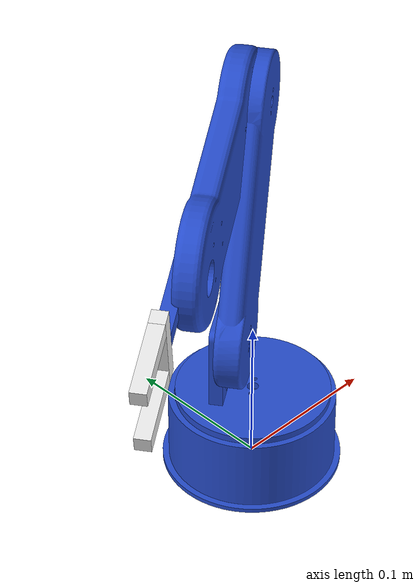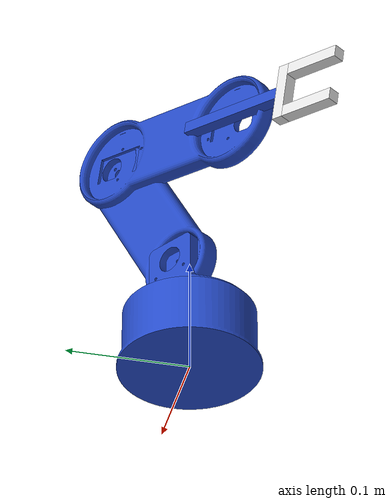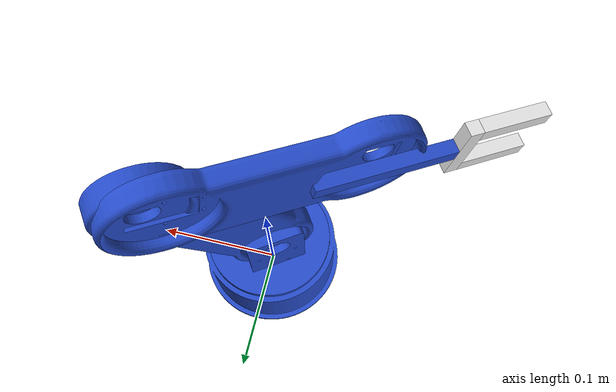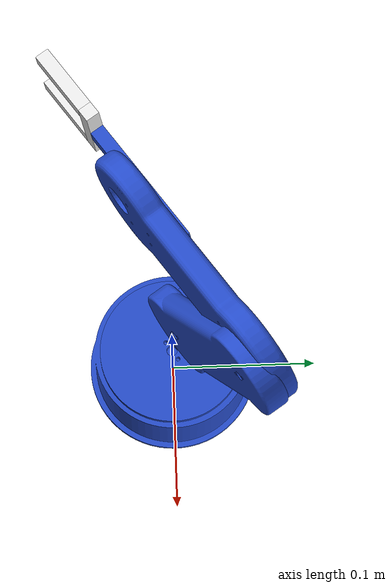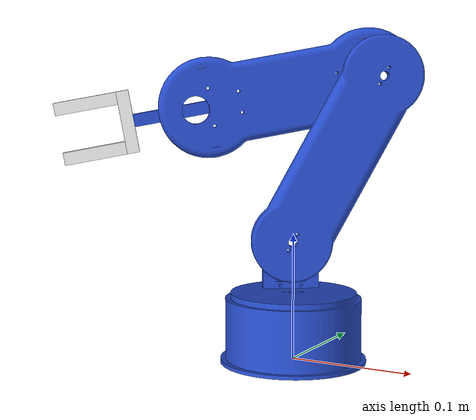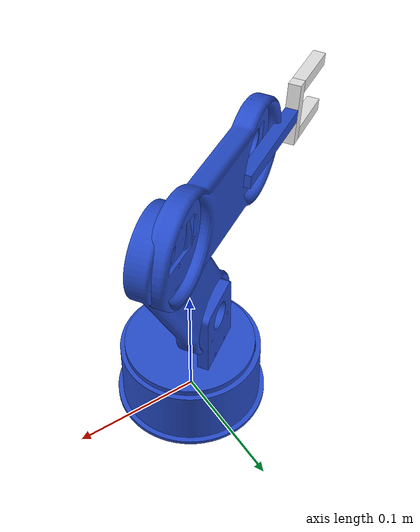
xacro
<?xml version="1.0"?>

<robot name="hexbot" xmlns:xacro="http://ros.org/wiki/xacro">

    <!-- body of the bot -->
  <link name="base_arm">
    <pose>0 0 0 0 0 0</pose>
    <inertial>
      <mass value="0.001"/>
      <origin rpy="0 0 0" xyz="0 0 0"/>
      <inertia ixx="0.0395416666667" ixy="0" ixz="0" iyy="0.106208333333" iyz="0" izz="0.106208333333"/>
    </inertial>
    <collision name="c">
      <origin rpy="0 0 0" xyz="0 0 0"/>
      <geometry>
        <mesh filename="package://hexbot/meshes/base.dae" scale="0.1 0.1 0.1"/>
      </geometry>
    </collision>
    <visual>
      <origin rpy="0 0 0" xyz="0 0 0"/>
      <geometry>
        <mesh filename="package://hexbot/meshes/base.dae" scale="0.1 0.1 0.1"/>
      </geometry>
      <material name="blue"/>
    </visual>
  </link>

  <link name="base_top">
    <pose>0 0 0 0 0 0</pose>
    <inertial>
      <mass value="0.001"/>
      <origin rpy="0 0 0" xyz="0 0 0"/>
      <inertia ixx="0.0395416666667" ixy="0" ixz="0" iyy="0.106208333333" iyz="0" izz="0.106208333333"/>
    </inertial>
    <collision name="ca">
      <origin rpy="0 0 0" xyz="0 0 0"/>
      <geometry>
        <mesh filename="package://hexbot/meshes/base_top.dae" scale="0.1 0.1 0.1"/>
      </geometry>
    </collision>
    <visual>
      <origin rpy="0 0 0" xyz="0 0 0"/>
      <geometry>
        <mesh filename="package://hexbot/meshes/base_top.dae" scale="0.1 0.1 0.1"/>
      </geometry>
      <material name="blue"/>
    </visual>
  </link>

  <joint name="joint_base_top" type="continuous">
    <origin rpy="0 0 0.6" xyz="0 0 0.048"/>
    <parent link="base_arm"/>
    <child link="base_top"/>
    <axis xyz="0 0 0.048"/>
    <limit effort="87" lower="-3.14" upper="3.14" velocity="2.3925" />
  </joint>

    <transmission name="$joint_base_top_trans">
      <type>transmission_interface/SimpleTransmission</type>
      <joint name="joint_base_top">
        <hardwareInterface>hardware_interface/EffortJointInterface</hardwareInterface>
      </joint>
      <actuator name="motor_joint_base_top">
        <hardwareInterface>hardware_interface/EffortJointInterface</hardwareInterface>
        <mechanicalReduction>1</mechanicalReduction>
      </actuator>
    </transmission>

    <link name="arm_lower">
    <pose>0 0 0 0 0 0</pose>
    <inertial>
      <mass value="0.001"/>
      <origin rpy="0 0 0" xyz="0 0 0"/>
      <inertia ixx="0.0395416666667" ixy="0" ixz="0" iyy="0.106208333333" iyz="0" izz="0.106208333333"/>
    </inertial>
    <collision name="ca">
      <origin rpy="0 0 0" xyz="0 0 0"/>
      <geometry>
        <mesh filename="package://hexbot/meshes/lower_arm.dae" scale="0.1 0.1 0.1"/>
      </geometry>
    </collision>
    <visual>
      <origin rpy="0 0 0" xyz="0 0 0"/>
      <geometry>
        <mesh filename="package://hexbot/meshes/lower_arm.dae" scale="0.1 0.1 0.1"/>
      </geometry>
      <material name="blue"/>
    </visual>
  </link>

      <transmission name="joint_arm_lower_trans">
      <type>transmission_interface/SimpleTransmission</type>
      <joint name="joint_arm_lower">
        <hardwareInterface>hardware_interface/EffortJointInterface</hardwareInterface>
      </joint>
      <actuator name="motor_joint_arm_lower">
        <hardwareInterface>hardware_interface/EffortJointInterface</hardwareInterface>
        <mechanicalReduction>1</mechanicalReduction>
      </actuator>
    </transmission>

  <joint name="joint_arm_lower" type="revolute">
    <origin rpy="0 0.5 0" xyz="0 0.01 0.045"/>
    <parent link="base_top"/>
    <child link="arm_lower"/>
    <axis xyz="0 0.048 0"/>
    <limit effort="87" lower="-1.4" upper="1.7" velocity="2.3925" />
  </joint>

  <link name="arm_upper">
    <pose>0 0 0 0 0 0</pose>
    <inertial>
      <mass value="0.001"/>
      <origin rpy="0 0 0" xyz="0 0 0"/>
      <inertia ixx="0.0395416666667" ixy="0" ixz="0" iyy="0.106208333333" iyz="0" izz="0.106208333333"/>
    </inertial>
    <collision name="caf">
      <origin rpy="0 0 0" xyz="0 0 0"/>
      <geometry>
        <mesh filename="package://hexbot/meshes/upper_arm.dae" scale="0.1 0.1 0.1"/>
      </geometry>
    </collision>
    <visual>
      <origin rpy="0 0 0" xyz="0 0 0"/>
      <geometry>
        <mesh filename="package://hexbot/meshes/upper_arm.dae" scale="0.1 0.1 0.1"/>
      </geometry>
      <material name="blue"/>
    </visual>
  </link>

  <joint name="joint_arm_upper" type="revolute">
    <origin rpy="0 -2.25 0" xyz="0 0.01 0.15"/>
    <parent link="arm_lower"/>
    <child link="arm_upper"/>
    <axis xyz="0 0.048 0"/>
    <limit effort="87" lower="-2.3" upper="2.3" velocity="2.3925" />
  </joint>

  <link name="lastlink">
    <pose>0 0 0 0 0 0</pose>
    <inertial>
      <mass value="0.001"/>
      <origin rpy="0 0 0" xyz="0 0 0"/>
      <inertia ixx="0.0395416666667" ixy="0" ixz="0" iyy="0.106208333333" iyz="0" izz="0.106208333333"/>
    </inertial>
    <collision name="caf">
      <origin rpy="0 0 0" xyz="0 0 0"/>
      <geometry>
         <box size="0.01 0.1 0.01"/>
      </geometry>
    </collision>
    <visual>
      <origin rpy="0 0 0" xyz="0 0 0"/>
      <geometry>
         <box size="0.01 0.10 0.01"/>
      </geometry>
      <material name="blue"/>
    </visual>
  </link>

  <joint name="joint_lastlink" type="revolute">
    <origin rpy="1.5707 0 0" xyz="0 0.01 0.15"/>
    <parent link="arm_upper"/>
    <child link="lastlink"/>
    <axis xyz="0 0 -0.05"/>
    <limit effort="87" lower="-2.3" upper="2.3" velocity="2.3925" />
  </joint>

  <link name="hand">
    <inertial>
      <origin rpy="0 0 0" xyz="0 0 0"/>
      <mass value="0.001"/>
      <inertia ixx="0.0010417" ixy="0" ixz="0" iyy="0.00028333" iyz="0" izz="0.0009083"/>
    </inertial>
    <visual>
      <origin rpy="0 0 0" xyz="0 0 0"/>
      <geometry>
        <box size="0.05 0.01 0.01"/>
      </geometry>
      <material name="white"/>
    </visual>
    <collision>
      <origin rpy="0 0 0" xyz="0 0 0"/>
      <geometry>
        <box size="0.09 0.01 0.01"/>
      </geometry>
    </collision>
  </link>
  <joint name="hand_toup" type="fixed">
    <origin rpy="0 0 0" xyz="0 0.055 0"/>
    <parent link="lastlink"/>
    <child link="hand"/>
  </joint>

    <link name="fingerleft">
    <inertial>
      <origin rpy="0 0 0" xyz="0 0 0"/>
      <mass value="0.01"/>
      <inertia ixx="0.0010417" ixy="0" ixz="0" iyy="0.00028333" iyz="0" izz="0.0009083"/>
    </inertial>
    <visual>
      <origin rpy="0 0 0" xyz="0 0 0"/>
      <geometry>
        <box size="0.01 0.05 0.01"/>
      </geometry>
      <material name="white"/>
    </visual>
    <collision>
      <origin rpy="0 0 0" xyz="0 0 0"/>
      <geometry>
        <box size="0.01 0.05 0.01"/>
      </geometry>
    </collision>
  </link>

  <joint name="fing_tohand" type="fixed">
    <origin rpy="0 0 0" xyz="-0.02 0.03 0"/>
    <parent link="hand"/>
    <child link="fingerleft"/>
  </joint>

    <link name="fingerright">
    <inertial>
      <origin rpy="0 0 0" xyz="0 0 0"/>
      <mass value="0.001"/>
      <inertia ixx="0.0010417" ixy="0" ixz="0" iyy="0.00028333" iyz="0" izz="0.0009083"/>
    </inertial>
    <visual>
      <origin rpy="0 0 0" xyz="0 0 0"/>
      <geometry>
        <box size="0.01 0.05 0.01"/>
      </geometry>
      <material name="white"/>
    </visual>
    <collision>
      <origin rpy="0 0 0" xyz="0 0 0"/>
      <geometry>
        <box size="0.01 0.05 0.01"/>
      </geometry>
    </collision>
  </link>
  <joint name="fingr_tohand" type="fixed">
    <origin rpy="0 0 0" xyz="0.02 0.03 0"/>
    <parent link="hand"/>
    <child link="fingerright"/>
  </joint>

</robot>
